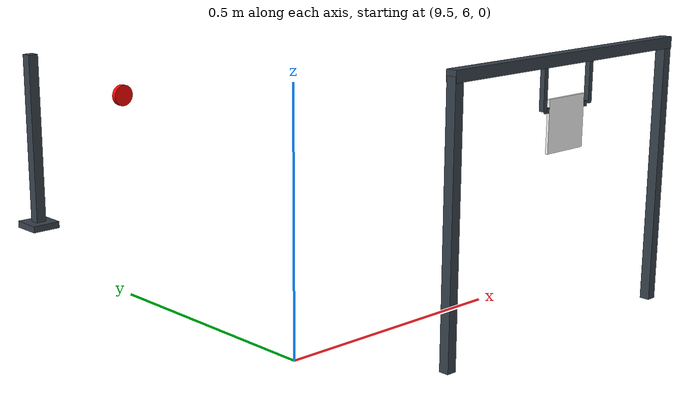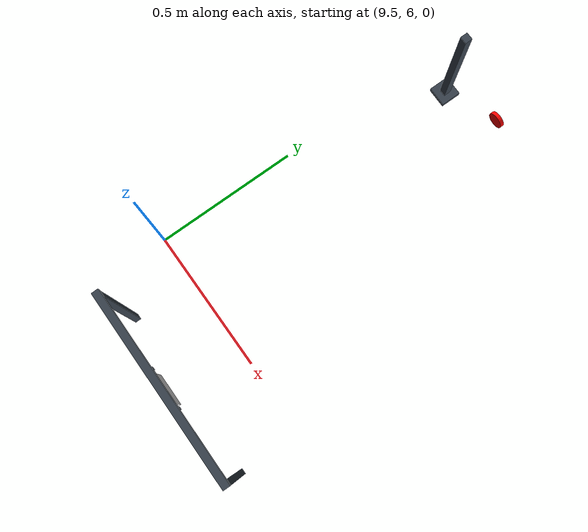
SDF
<sdf version="1.8">
 <world name="it_arena_track">
  <model name="it_arena_track_static">
   <static>true</static>
   <link name="aruco_45">
    <pose>9.9613 5.7798 0.4000 0 0 -1.57790</pose>
    <visual name="aruco_45_vis">
     <geometry><box><size>0.0050 0.1000 0.1000</size></box></geometry>
     <material>
      <diffuse>1 1 1 1</diffuse>
      <pbr>
       <metal>
        <albedo_map>/mnt/c/Users/Jinhyeong/Documents/ChatGPT/IT ARENA local/src/arena_gazebo/worlds/it_arena_official/aruco/aruco_id45.png</albedo_map>
       </metal>
      </pbr>
     </material>
    </visual>
    <collision name="aruco_45_col"><geometry><box><size>0.0050 0.1000 0.1000</size></box></geometry></collision>
   </link>
   <link name="tl_post">
    <pose>9.6292013823 7.0654921147 0.0000000000 0.0000000000 0.0000000000 1.5737961678</pose>
    <visual name="post">
     <pose>0.0000000000 0.0000000000 0.2100000000 0.0000000000 0.0000000000 0.0000000000</pose>
     <geometry><box><size>0.0250000000 0.0250000000 0.4200000000</size></box></geometry>
     <material>
      <ambient>0.22 0.26 0.30 1</ambient>
      <diffuse>0.22 0.26 0.30 1</diffuse>
      <specular>0 0 0 1</specular>
     </material>
     <cast_shadows>false</cast_shadows>
    </visual>
    <collision name="post_collision">
     <pose>0.0000000000 0.0000000000 0.2100000000 0.0000000000 0.0000000000 0.0000000000</pose>
     <geometry><box><size>0.0250000000 0.0250000000 0.4200000000</size></box></geometry>
    </collision>
    <visual name="foot">
     <pose>0.0000000000 0.0000000000 0.0080000000 0.0000000000 0.0000000000 0.0000000000</pose>
     <geometry><box><size>0.0700000000 0.0700000000 0.0160000000</size></box></geometry>
     <material>
      <ambient>0.22 0.26 0.30 1</ambient>
      <diffuse>0.22 0.26 0.30 1</diffuse>
      <specular>0 0 0 1</specular>
     </material>
     <cast_shadows>false</cast_shadows>
    </visual>
    <collision name="foot_collision">
     <pose>0.0000000000 0.0000000000 0.0080000000 0.0000000000 0.0000000000 0.0000000000</pose>
     <geometry><box><size>0.0700000000 0.0700000000 0.0160000000</size></box></geometry>
    </collision>
   </link>
   <link name="lamp_red">
    <pose>9.8593083415 7.0301822391 0.3000000000 0.0000000000 0.0000000000 1.5737961678</pose>
    <visual name="lamp_red_vis">
     <pose>0.0000000000 0.0000000000 0.0000000000 0.0000000000 1.5707963268 0.0000000000</pose>
     <geometry><cylinder><radius>0.026</radius><length>.012</length></cylinder></geometry>
     <material>
      <ambient>1 0.015 0.005 1</ambient>
      <diffuse>1 0.015 0.005 1</diffuse>
      <specular>0 0 0 1</specular>
      <emissive>1 0.015 0.005 1</emissive>
     </material>
     <cast_shadows>false</cast_shadows>
    </visual>
   </link>
   <link name="team_gantry_support_45">
    <pose>9.9613000000 5.7798000000 0.0000000000 0.0000000000 0.0000000000 -1.5779000000</pose>
    <visual name="right_post">
     <pose>0.0000000000 -0.3000000000 0.2600000000 0.0000000000 0.0000000000 0.0000000000</pose>
     <geometry><box><size>0.0200000000 0.0200000000 0.5200000000</size></box></geometry>
     <material>
      <ambient>0.22 0.26 0.30 1</ambient>
      <diffuse>0.22 0.26 0.30 1</diffuse>
      <specular>0 0 0 1</specular>
     </material>
     <cast_shadows>false</cast_shadows>
    </visual>
    <collision name="right_post_collision">
     <pose>0.0000000000 -0.3000000000 0.2600000000 0.0000000000 0.0000000000 0.0000000000</pose>
     <geometry><box><size>0.0200000000 0.0200000000 0.5200000000</size></box></geometry>
    </collision>
    <visual name="right_hanger">
     <pose>0.0000000000 -0.0650000000 0.4750000000 0.0000000000 0.0000000000 0.0000000000</pose>
     <geometry><box><size>0.0100000000 0.0100000000 0.0900000000</size></box></geometry>
     <material>
      <ambient>0.22 0.26 0.30 1</ambient>
      <diffuse>0.22 0.26 0.30 1</diffuse>
      <specular>0 0 0 1</specular>
     </material>
     <cast_shadows>false</cast_shadows>
    </visual>
    <collision name="right_hanger_collision">
     <pose>0.0000000000 -0.0650000000 0.4750000000 0.0000000000 0.0000000000 0.0000000000</pose>
     <geometry><box><size>0.0100000000 0.0100000000 0.0900000000</size></box></geometry>
    </collision>
    <visual name="right_edge_clamp">
     <pose>0.0000000000 -0.0550000000 0.4300000000 0.0000000000 0.0000000000 0.0000000000</pose>
     <geometry><box><size>0.0050000000 0.0100000000 0.0100000000</size></box></geometry>
     <material>
      <ambient>0.22 0.26 0.30 1</ambient>
      <diffuse>0.22 0.26 0.30 1</diffuse>
      <specular>0 0 0 1</specular>
     </material>
     <cast_shadows>false</cast_shadows>
    </visual>
    <collision name="right_edge_clamp_collision">
     <pose>0.0000000000 -0.0550000000 0.4300000000 0.0000000000 0.0000000000 0.0000000000</pose>
     <geometry><box><size>0.0050000000 0.0100000000 0.0100000000</size></box></geometry>
    </collision>
    <visual name="left_post">
     <pose>0.0000000000 0.3000000000 0.2600000000 0.0000000000 0.0000000000 0.0000000000</pose>
     <geometry><box><size>0.0200000000 0.0200000000 0.5200000000</size></box></geometry>
     <material>
      <ambient>0.22 0.26 0.30 1</ambient>
      <diffuse>0.22 0.26 0.30 1</diffuse>
      <specular>0 0 0 1</specular>
     </material>
     <cast_shadows>false</cast_shadows>
    </visual>
    <collision name="left_post_collision">
     <pose>0.0000000000 0.3000000000 0.2600000000 0.0000000000 0.0000000000 0.0000000000</pose>
     <geometry><box><size>0.0200000000 0.0200000000 0.5200000000</size></box></geometry>
    </collision>
    <visual name="left_hanger">
     <pose>0.0000000000 0.0650000000 0.4750000000 0.0000000000 0.0000000000 0.0000000000</pose>
     <geometry><box><size>0.0100000000 0.0100000000 0.0900000000</size></box></geometry>
     <material>
      <ambient>0.22 0.26 0.30 1</ambient>
      <diffuse>0.22 0.26 0.30 1</diffuse>
      <specular>0 0 0 1</specular>
     </material>
     <cast_shadows>false</cast_shadows>
    </visual>
    <collision name="left_hanger_collision">
     <pose>0.0000000000 0.0650000000 0.4750000000 0.0000000000 0.0000000000 0.0000000000</pose>
     <geometry><box><size>0.0100000000 0.0100000000 0.0900000000</size></box></geometry>
    </collision>
    <visual name="left_edge_clamp">
     <pose>0.0000000000 0.0550000000 0.4300000000 0.0000000000 0.0000000000 0.0000000000</pose>
     <geometry><box><size>0.0050000000 0.0100000000 0.0100000000</size></box></geometry>
     <material>
      <ambient>0.22 0.26 0.30 1</ambient>
      <diffuse>0.22 0.26 0.30 1</diffuse>
      <specular>0 0 0 1</specular>
     </material>
     <cast_shadows>false</cast_shadows>
    </visual>
    <collision name="left_edge_clamp_collision">
     <pose>0.0000000000 0.0550000000 0.4300000000 0.0000000000 0.0000000000 0.0000000000</pose>
     <geometry><box><size>0.0050000000 0.0100000000 0.0100000000</size></box></geometry>
    </collision>
    <visual name="overhead_beam">
     <pose>0.0000000000 0.0000000000 0.5200000000 0.0000000000 0.0000000000 0.0000000000</pose>
     <geometry><box><size>0.0220000000 0.6200000000 0.0220000000</size></box></geometry>
     <material>
      <ambient>0.22 0.26 0.30 1</ambient>
      <diffuse>0.22 0.26 0.30 1</diffuse>
      <specular>0 0 0 1</specular>
     </material>
     <cast_shadows>false</cast_shadows>
    </visual>
    <collision name="overhead_beam_collision">
     <pose>0.0000000000 0.0000000000 0.5200000000 0.0000000000 0.0000000000 0.0000000000</pose>
     <geometry><box><size>0.0220000000 0.6200000000 0.0220000000</size></box></geometry>
    </collision>
   </link>
  </model>
 </world>
</sdf>
